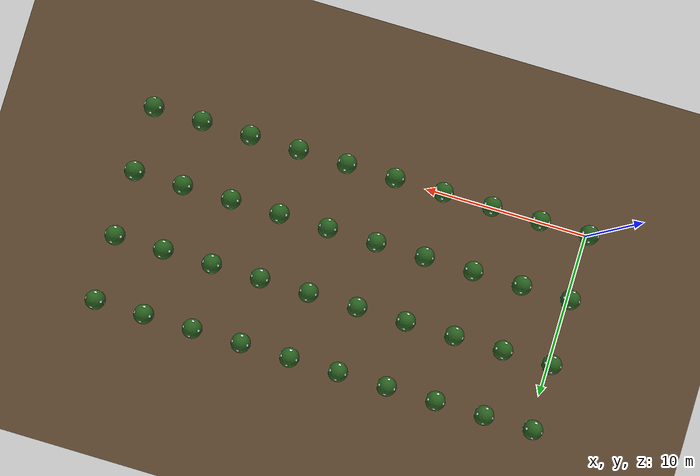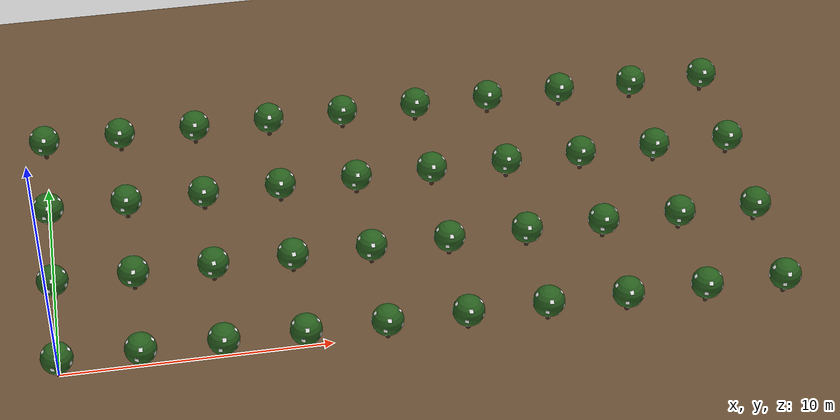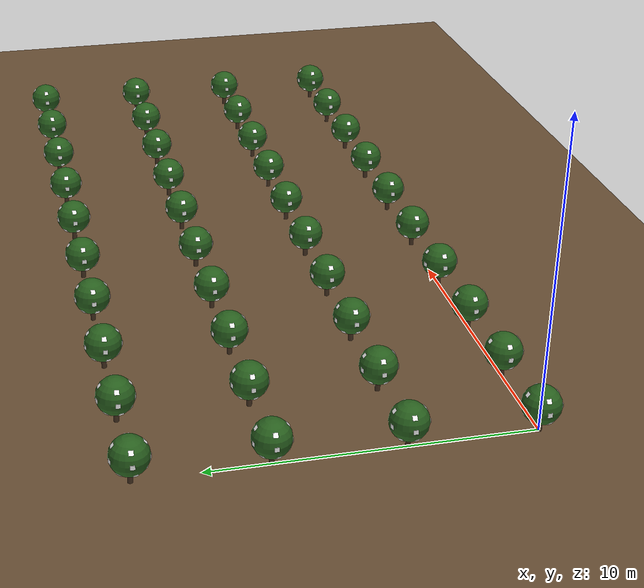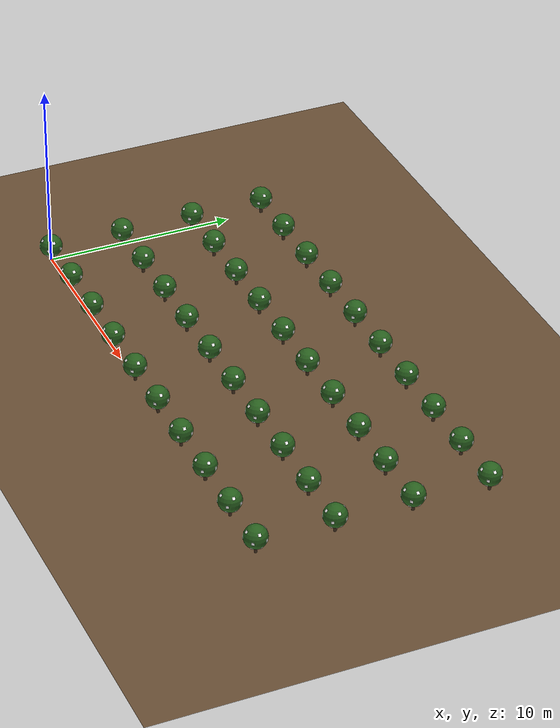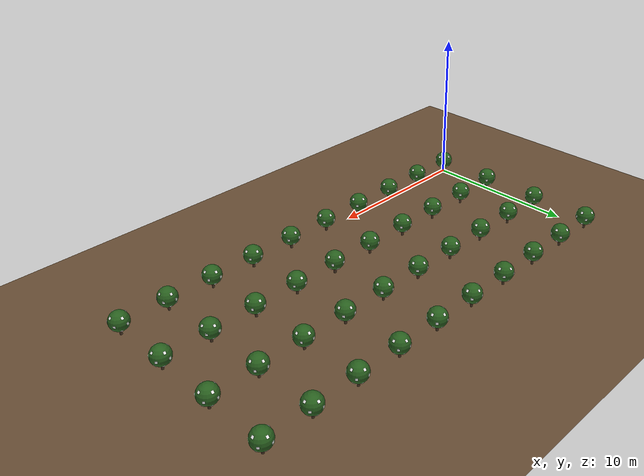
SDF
<?xml version="1.0" ?>
<sdf version="1.8">
  <world name="orchard">

    <physics name="1ms" type="ignored">
      <max_step_size>0.001</max_step_size>
      <real_time_factor>1.0</real_time_factor>
    </physics>

    <plugin filename="gz-sim-physics-system"
            name="gz::sim::systems::Physics"/>
    <plugin filename="gz-sim-user-commands-system"
            name="gz::sim::systems::UserCommands"/>
    <plugin filename="gz-sim-scene-broadcaster-system"
            name="gz::sim::systems::SceneBroadcaster"/>

       <!-- REQUIRED PLUGIN FOR CAMERA VISUALIZATION AND DATA GENERATION -->
    <plugin filename="gz-sim-sensors-system"
            name="gz::sim::systems::Sensors">
      <render_engine>ogre2</render_engine>
    </plugin>

    <!-- Sun -->
    <scene>
  <ambient>0.4 0.4 0.4 1</ambient>
  <background>0.53 0.81 0.92 1</background>
  <shadows>true</shadows>
</scene>
    <light type="directional" name="sun">
      <cast_shadows>true</cast_shadows>
      <pose>0 0 10 0 0 0</pose>
      <diffuse>0.8 0.8 0.8 1</diffuse>
      <specular>0.2 0.2 0.2 1</specular>
      <direction>-0.5 0.1 -0.9</direction>
    </light>

    <!-- Ground plane -->
    <model name="ground_plane">
      <static>true</static>
      <link name="link">
        <collision name="collision">
          <geometry><plane><normal>0 0 1</normal></plane></geometry>
        </collision>
        <visual name="visual">
          <geometry><plane><normal>0 0 1</normal><size>100 100</size></plane></geometry>
          <material>
            <ambient>0.4 0.3 0.2 1</ambient>
            <diffuse>0.4 0.3 0.2 1</diffuse>
          </material>
        </visual>
      </link>
    </model>
<!-- Tree placeholders: 2 rows x 10 columns -->
<!-- Row spacing: 4m (Y axis), Tree spacing: 3m (X axis) -->
<!-- Box is 0.5x0.5x1.5m, z=0.75 so it sits on the ground -->

<!-- Row 0 -->
<include><uri>model://citrus_tree</uri><name>tree_0_0</name><pose>0  0 0 0 0 0</pose></include>
<include><uri>model://citrus_tree</uri><name>tree_0_1</name><pose>3  0 0 0 0 0</pose></include>
<include><uri>model://citrus_tree</uri><name>tree_0_2</name><pose>6  0 0 0 0 0</pose></include>
<include><uri>model://citrus_tree</uri><name>tree_0_3</name><pose>9  0 0 0 0 0</pose></include>
<include><uri>model://citrus_tree</uri><name>tree_0_4</name><pose>12 0 0 0 0 0</pose></include>
<include><uri>model://citrus_tree</uri><name>tree_0_5</name><pose>15 0 0 0 0 0</pose></include>
<include><uri>model://citrus_tree</uri><name>tree_0_6</name><pose>18 0 0 0 0 0</pose></include>
<include><uri>model://citrus_tree</uri><name>tree_0_7</name><pose>21 0 0 0 0 0</pose></include>
<include><uri>model://citrus_tree</uri><name>tree_0_8</name><pose>24 0 0 0 0 0</pose></include>
<include><uri>model://citrus_tree</uri><name>tree_0_9</name><pose>27 0 0 0 0 0</pose></include>

<!-- Row 1 -->
<include><uri>model://citrus_tree</uri><name>tree_1_0</name><pose>0  4 0 0 0 0</pose></include>
<include><uri>model://citrus_tree</uri><name>tree_1_1</name><pose>3  4 0 0 0 0</pose></include>
<include><uri>model://citrus_tree</uri><name>tree_1_2</name><pose>6  4 0 0 0 0</pose></include>
<include><uri>model://citrus_tree</uri><name>tree_1_3</name><pose>9  4 0 0 0 0</pose></include>
<include><uri>model://citrus_tree</uri><name>tree_1_4</name><pose>12 4 0 0 0 0</pose></include>
<include><uri>model://citrus_tree</uri><name>tree_1_5</name><pose>15 4 0 0 0 0</pose></include>
<include><uri>model://citrus_tree</uri><name>tree_1_6</name><pose>18 4 0 0 0 0</pose></include>
<include><uri>model://citrus_tree</uri><name>tree_1_7</name><pose>21 4 0 0 0 0</pose></include>
<include><uri>model://citrus_tree</uri><name>tree_1_8</name><pose>24 4 0 0 0 0</pose></include>
<include><uri>model://citrus_tree</uri><name>tree_1_9</name><pose>27 4 0 0 0 0</pose></include>

<!-- Row 2 -->
<include><uri>model://citrus_tree</uri><name>tree_2_0</name><pose>0 8 0 0 0 0</pose></include>
<include><uri>model://citrus_tree</uri><name>tree_2_1</name><pose>3 8 0 0 0 0</pose></include>
<include><uri>model://citrus_tree</uri><name>tree_2_2</name><pose>6 8 0 0 0 0</pose></include>
<include><uri>model://citrus_tree</uri><name>tree_2_3</name><pose>9 8 0 0 0 0</pose></include>
<include><uri>model://citrus_tree</uri><name>tree_2_4</name><pose>12 8 0 0 0 0</pose></include>
<include><uri>model://citrus_tree</uri><name>tree_2_5</name><pose>15 8 0 0 0 0</pose></include>
<include><uri>model://citrus_tree</uri><name>tree_2_6</name><pose>18 8 0 0 0 0</pose></include>
<include><uri>model://citrus_tree</uri><name>tree_2_7</name><pose>21 8 0 0 0 0</pose></include>
<include><uri>model://citrus_tree</uri><name>tree_2_8</name><pose>24 8 0 0 0 0</pose></include>
<include><uri>model://citrus_tree</uri><name>tree_2_9</name><pose>27 8 0 0 0 0</pose></include>

<!-- Row 3 -->
<include><uri>model://citrus_tree</uri><name>tree_3_0</name><pose>0 12 0 0 0 0</pose></include>
<include><uri>model://citrus_tree</uri><name>tree_3_1</name><pose>3 12 0 0 0 0</pose></include>
<include><uri>model://citrus_tree</uri><name>tree_3_2</name><pose>6 12 0 0 0 0</pose></include>
<include><uri>model://citrus_tree</uri><name>tree_3_3</name><pose>9 12 0 0 0 0</pose></include>
<include><uri>model://citrus_tree</uri><name>tree_3_4</name><pose>12 12 0 0 0 0</pose></include>
<include><uri>model://citrus_tree</uri><name>tree_3_5</name><pose>15 12 0 0 0 0</pose></include>
<include><uri>model://citrus_tree</uri><name>tree_3_6</name><pose>18 12 0 0 0 0</pose></include>
<include><uri>model://citrus_tree</uri><name>tree_3_7</name><pose>21 12 0 0 0 0</pose></include>
<include><uri>model://citrus_tree</uri><name>tree_3_8</name><pose>24 12 0 0 0 0</pose></include>
<include><uri>model://citrus_tree</uri><name>tree_3_9</name><pose>27 12 0 0 0 0</pose></include>
  </world>
</sdf>

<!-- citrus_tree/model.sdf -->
<sdf version="1.8">
  <model name="citrus_tree">
    <static>true</static>
    <link name="link">

      <!-- Trunk -->
      <visual name="trunk_visual">
        <pose>0 0 0.15 0 0 0</pose>
        <geometry>
          <cylinder>
            <radius>0.08</radius>
            <length>0.3</length>
          </cylinder>
        </geometry>
        <material>
          <ambient>0.18 0.13 0.08 1</ambient>
          <diffuse>0.28 0.20 0.13 1</diffuse>
          <specular>0.02 0.02 0.02 1</specular>
        </material>
      </visual>

      <collision name="trunk_col">
        <pose>0 0 0.15 0 0 0</pose>
        <geometry>
          <cylinder>
            <radius>0.08</radius>
            <length>0.3</length>
          </cylinder>
        </geometry>
      </collision>

      <!-- Canopy -->
      <visual name="canopy_visual">
        <pose>0 0 0.9 0 0 0</pose>
        <geometry>
          <sphere>
            <radius>0.6</radius>
          </sphere>
        </geometry>
        <material>
          <ambient>0.09 0.28 0.09 1</ambient>
          <diffuse>0.16 0.38 0.12 1</diffuse>
          <specular>0.05 0.05 0.05 1</specular>
        </material>
      </visual>

      <collision name="canopy_col">
        <pose>0 0 0.9 0 0 0</pose>
        <geometry>
          <sphere>
            <radius>0.6</radius>
          </sphere>
        </geometry>
      </collision>

      <!-- Upper ring: 4 markers at 40 deg elevation, azimuth offset 0 deg -->
      <visual name="aruco_marker_01">
        <pose>0.4615 0.0 1.2873 0 0.8727 0.0</pose>
        <geometry>
          <box>
            <size>0.15 0.15 0.005</size>
          </box>
        </geometry>
        <material>
          <ambient>1 1 1 1</ambient>
          <diffuse>1 1 1 1</diffuse>
          <pbr>
            <metal>
              <albedo_map>model://citrus_tree/materials/textures/aruco_marker_0.png</albedo_map>
            </metal>
          </pbr>
        </material>
      </visual>

      <visual name="aruco_marker_02">
        <pose>0.0 0.4615 1.2873 0 0.8727 1.5708</pose>
        <geometry>
          <box>
            <size>0.15 0.15 0.005</size>
          </box>
        </geometry>
        <material>
          <ambient>1 1 1 1</ambient>
          <diffuse>1 1 1 1</diffuse>
          <pbr>
            <metal>
              <albedo_map>model://citrus_tree/materials/textures/aruco_marker_0.png</albedo_map>
            </metal>
          </pbr>
        </material>
      </visual>

      <visual name="aruco_marker_03">
        <pose>-0.4615 0.0 1.2873 0 0.8727 3.1416</pose>
        <geometry>
          <box>
            <size>0.15 0.15 0.005</size>
          </box>
        </geometry>
        <material>
          <ambient>1 1 1 1</ambient>
          <diffuse>1 1 1 1</diffuse>
          <pbr>
            <metal>
              <albedo_map>model://citrus_tree/materials/textures/aruco_marker_0.png</albedo_map>
            </metal>
          </pbr>
        </material>
      </visual>

      <visual name="aruco_marker_04">
        <pose>-0.0 -0.4615 1.2873 0 0.8727 4.7124</pose>
        <geometry>
          <box>
            <size>0.15 0.15 0.005</size>
          </box>
        </geometry>
        <material>
          <ambient>1 1 1 1</ambient>
          <diffuse>1 1 1 1</diffuse>
          <pbr>
            <metal>
              <albedo_map>model://citrus_tree/materials/textures/aruco_marker_0.png</albedo_map>
            </metal>
          </pbr>
        </material>
      </visual>

      <!-- Equator ring: 5 markers at 0 deg elevation, azimuth offset 37 deg -->
      <visual name="aruco_marker_05">
        <pose>0.4812 0.3626 0.9 0 1.5708 0.6458</pose>
        <geometry>
          <box>
            <size>0.15 0.15 0.005</size>
          </box>
        </geometry>
        <material>
          <ambient>1 1 1 1</ambient>
          <diffuse>1 1 1 1</diffuse>
          <pbr>
            <metal>
              <albedo_map>model://citrus_tree/materials/textures/aruco_marker_0.png</albedo_map>
            </metal>
          </pbr>
        </material>
      </visual>

      <visual name="aruco_marker_06">
        <pose>-0.1962 0.5697 0.9 0 1.5708 1.9024</pose>
        <geometry>
          <box>
            <size>0.15 0.15 0.005</size>
          </box>
        </geometry>
        <material>
          <ambient>1 1 1 1</ambient>
          <diffuse>1 1 1 1</diffuse>
          <pbr>
            <metal>
              <albedo_map>model://citrus_tree/materials/textures/aruco_marker_0.png</albedo_map>
            </metal>
          </pbr>
        </material>
      </visual>

      <visual name="aruco_marker_07">
        <pose>-0.6024 -0.0105 0.9 0 1.5708 3.159</pose>
        <geometry>
          <box>
            <size>0.15 0.15 0.005</size>
          </box>
        </geometry>
        <material>
          <ambient>1 1 1 1</ambient>
          <diffuse>1 1 1 1</diffuse>
          <pbr>
            <metal>
              <albedo_map>model://citrus_tree/materials/textures/aruco_marker_0.png</albedo_map>
            </metal>
          </pbr>
        </material>
      </visual>

      <visual name="aruco_marker_08">
        <pose>-0.1762 -0.5762 0.9 0 1.5708 4.4157</pose>
        <geometry>
          <box>
            <size>0.15 0.15 0.005</size>
          </box>
        </geometry>
        <material>
          <ambient>1 1 1 1</ambient>
          <diffuse>1 1 1 1</diffuse>
          <pbr>
            <metal>
              <albedo_map>model://citrus_tree/materials/textures/aruco_marker_0.png</albedo_map>
            </metal>
          </pbr>
        </material>
      </visual>

      <visual name="aruco_marker_09">
        <pose>0.4935 -0.3456 0.9 0 1.5708 5.6723</pose>
        <geometry>
          <box>
            <size>0.15 0.15 0.005</size>
          </box>
        </geometry>
        <material>
          <ambient>1 1 1 1</ambient>
          <diffuse>1 1 1 1</diffuse>
          <pbr>
            <metal>
              <albedo_map>model://citrus_tree/materials/textures/aruco_marker_0.png</albedo_map>
            </metal>
          </pbr>
        </material>
      </visual>

      <!-- Lower ring: 6 markers at -40 deg elevation, azimuth offset 74 deg -->
      <visual name="aruco_marker_10">
        <pose>0.1272 0.4437 0.5127 0 2.2689 1.2915</pose>
        <geometry>
          <box>
            <size>0.15 0.15 0.005</size>
          </box>
        </geometry>
        <material>
          <ambient>1 1 1 1</ambient>
          <diffuse>1 1 1 1</diffuse>
          <pbr>
            <metal>
              <albedo_map>model://citrus_tree/materials/textures/aruco_marker_0.png</albedo_map>
            </metal>
          </pbr>
        </material>
      </visual>

      <visual name="aruco_marker_11">
        <pose>-0.3206 0.332 0.5127 0 2.2689 2.3387</pose>
        <geometry>
          <box>
            <size>0.15 0.15 0.005</size>
          </box>
        </geometry>
        <material>
          <ambient>1 1 1 1</ambient>
          <diffuse>1 1 1 1</diffuse>
          <pbr>
            <metal>
              <albedo_map>model://citrus_tree/materials/textures/aruco_marker_0.png</albedo_map>
            </metal>
          </pbr>
        </material>
      </visual>

      <visual name="aruco_marker_12">
        <pose>-0.4478 -0.1117 0.5127 0 2.2689 3.3859</pose>
        <geometry>
          <box>
            <size>0.15 0.15 0.005</size>
          </box>
        </geometry>
        <material>
          <ambient>1 1 1 1</ambient>
          <diffuse>1 1 1 1</diffuse>
          <pbr>
            <metal>
              <albedo_map>model://citrus_tree/materials/textures/aruco_marker_0.png</albedo_map>
            </metal>
          </pbr>
        </material>
      </visual>

      <visual name="aruco_marker_13">
        <pose>-0.1272 -0.4437 0.5127 0 2.2689 4.4331</pose>
        <geometry>
          <box>
            <size>0.15 0.15 0.005</size>
          </box>
        </geometry>
        <material>
          <ambient>1 1 1 1</ambient>
          <diffuse>1 1 1 1</diffuse>
          <pbr>
            <metal>
              <albedo_map>model://citrus_tree/materials/textures/aruco_marker_0.png</albedo_map>
            </metal>
          </pbr>
        </material>
      </visual>

      <visual name="aruco_marker_14">
        <pose>0.3206 -0.332 0.5127 0 2.2689 5.4803</pose>
        <geometry>
          <box>
            <size>0.15 0.15 0.005</size>
          </box>
        </geometry>
        <material>
          <ambient>1 1 1 1</ambient>
          <diffuse>1 1 1 1</diffuse>
          <pbr>
            <metal>
              <albedo_map>model://citrus_tree/materials/textures/aruco_marker_0.png</albedo_map>
            </metal>
          </pbr>
        </material>
      </visual>

      <visual name="aruco_marker_15">
        <pose>0.4478 0.1117 0.5127 0 2.2689 6.5275</pose>
        <geometry>
          <box>
            <size>0.15 0.15 0.005</size>
          </box>
        </geometry>
        <material>
          <ambient>1 1 1 1</ambient>
          <diffuse>1 1 1 1</diffuse>
          <pbr>
            <metal>
              <albedo_map>model://citrus_tree/materials/textures/aruco_marker_0.png</albedo_map>
            </metal>
          </pbr>
        </material>
      </visual>

    </link>
  </model>
</sdf>
